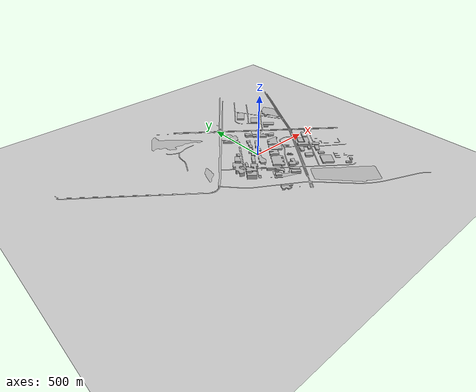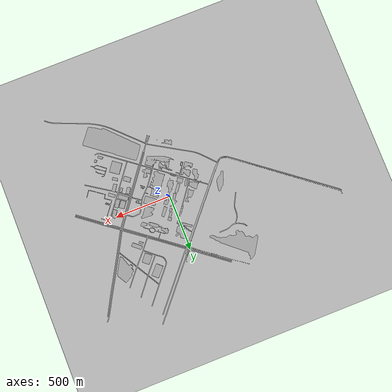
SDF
<?xml version="1.0" ?>
<sdf version="1.6">
  <world name="inu">
    <gui fullscreen='0'>
      <camera name='user_camera'>
        <pose>111.237427 -207.493774 49.090794 0.0 0.991644 0.908192</pose>
      </camera>
    </gui>
    <include>
      <uri>model://sun</uri>
    </include>
    <include>
      <uri>model://ground_plane</uri>
    </include>
    <include>
      <uri>model://inu</uri>
      <pose>0 0 0 0 0 0</pose>
    </include>

    <spherical_coordinates>
      <surface_model>EARTH_WGS84</surface_model>
      <latitude_deg>37.37518</latitude_deg>
      <longitude_deg>126.63228</longitude_deg>
      <elevation>0.0</elevation>
      <heading_deg>180</heading_deg>
    </spherical_coordinates>
  </world>
</sdf>

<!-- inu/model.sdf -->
<sdf version="1.6">
  <model name="inu">
    <static>true</static>
    <link name="link">
      <pose>0 0 0 0 0 0</pose>
      <collision name="collision">
        <geometry>
          <mesh><uri>model://inu/meshes/inu.obj</uri></mesh>
        </geometry>
      </collision>
      <visual name="visual">
        <geometry>
          <mesh><uri>model://inu/meshes/inu.obj</uri></mesh>
        </geometry>
      </visual>
    </link>
  </model>
</sdf>
